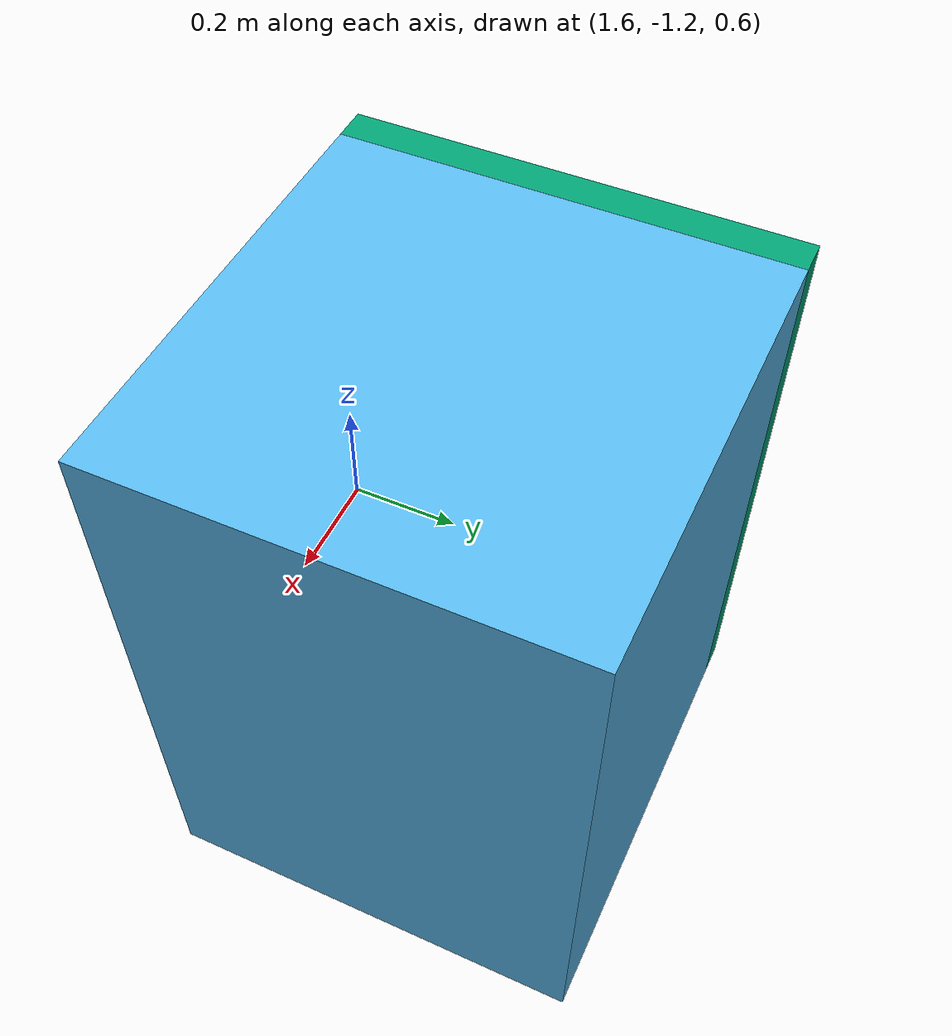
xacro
<?xml version="1.0" ?>
<robot name="dishwasher" xmlns:xacro="http://www.ros.org/wiki/xacro" >
    <xacro:arg name="prefix" default=""/>
    <xacro:property name="prefix" default="$(arg prefix)"/>

    <link name="world"/>
	<joint name="${prefix}fixed" type="fixed">
		<origin rpy="1.57 0 -1.57" xyz="2 -0.8 1.0"/>
		<child link="dish_link"/>
		<parent link="world"/>
	</joint>
	<link name="dish_link">
		<visual name="frame-5">
			<origin xyz="0 0 0"/>
			<geometry>
			    <box size="0.65 0.9 0.65"/>
			</geometry>
		</visual>
		<collision>
			<origin xyz="0 0 0"/>
			<geometry>
			    <box size="0.65 0.9 0.65"/>
			</geometry>
		</collision>
	</link>
	<joint name="articulation_joint" type="revolute">
		<origin xyz="0.325 -0.45 0.325"/>
		<axis xyz="1 0 0"/>
		<child link="door_link"/>
		<parent link="dish_link"/>
		<dynamics friction="4" damping="2"/>
		<limit effort="1000" velocity="1.0" lower="0.0" upper="1.5707963267948966"/>
	</joint>
	<link name="door_link">
	    <inertial>
            <origin rpy="0 0 0" xyz="0 0 0"/>
            <mass value="5.8"/>
            <inertia ixx="0.4333886585" ixy="0" ixz="0" iyy="0.39146708384" iyz="0" izz="0.042168942339999994"/>
        </inertial>
		<visual name="door_visual">
		    <origin xyz="-0.325 0.45 0.025"/>
			<geometry>
			    <box size="0.65 0.9 0.05"/>
			</geometry>
		</visual>
		<collision>
		    <origin xyz="-0.325 0.45 0.025"/>
			<geometry>
			    <box size="0.65 0.9 0.05"/>
			</geometry>
		</collision>
	</link>
	<joint name="${prefix}handle_joint" type="fixed">
		<origin rpy="0 0 0" xyz="-0.25 0.8 0.08"/>
		<child link="${prefix}handle_link"/>
		<parent link="door_link"/>
	</joint>
	<link name="${prefix}handle_link">
		<visual name="handle-8">
			<origin xyz="0 0 0.03"/>
			<geometry>
			    <box size="0.5 0.02 0.02"/>
			</geometry>
			<material name="">
                <color rgba="0 0 1 1"/>
            </material>
		</visual>
		<collision>
			<origin xyz="0 0 0.03"/>
			<geometry>
			    <box size="0.5 0.02 0.02"/>
			</geometry>
		</collision>
	</link>
</robot>
